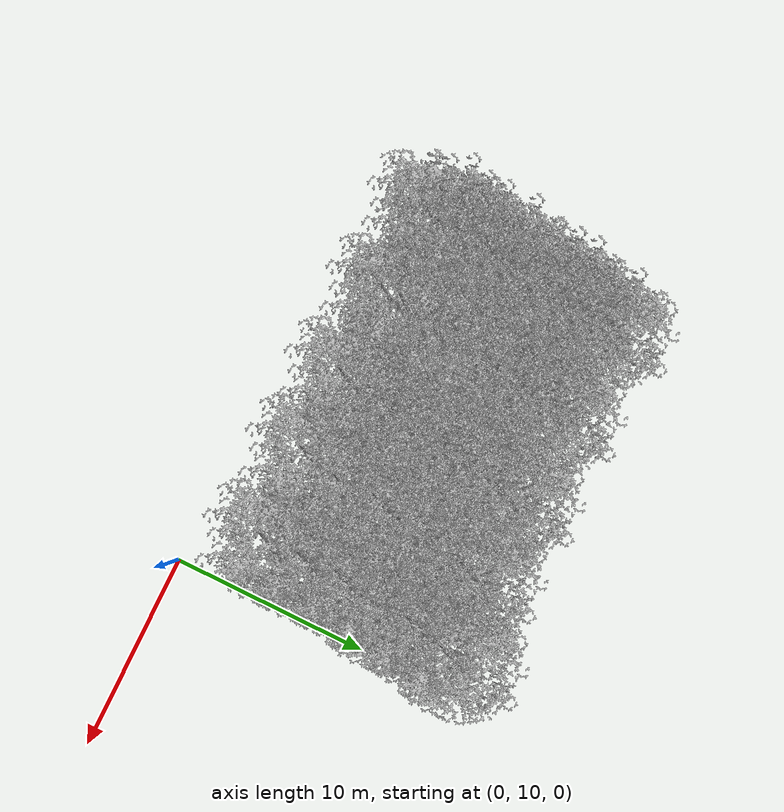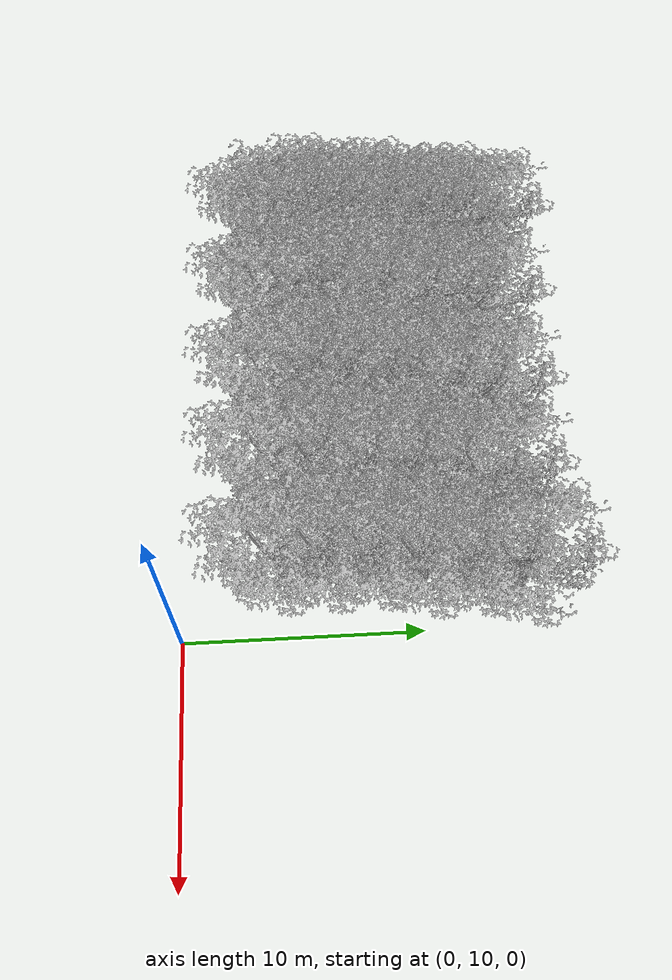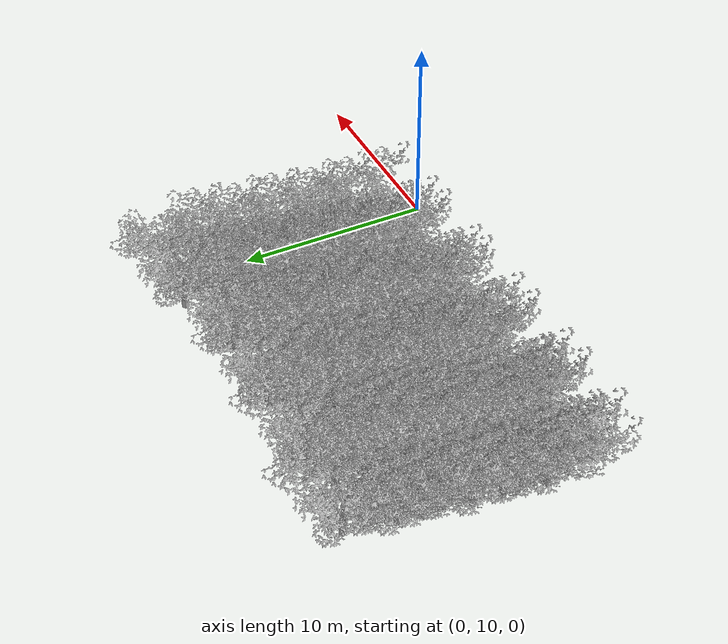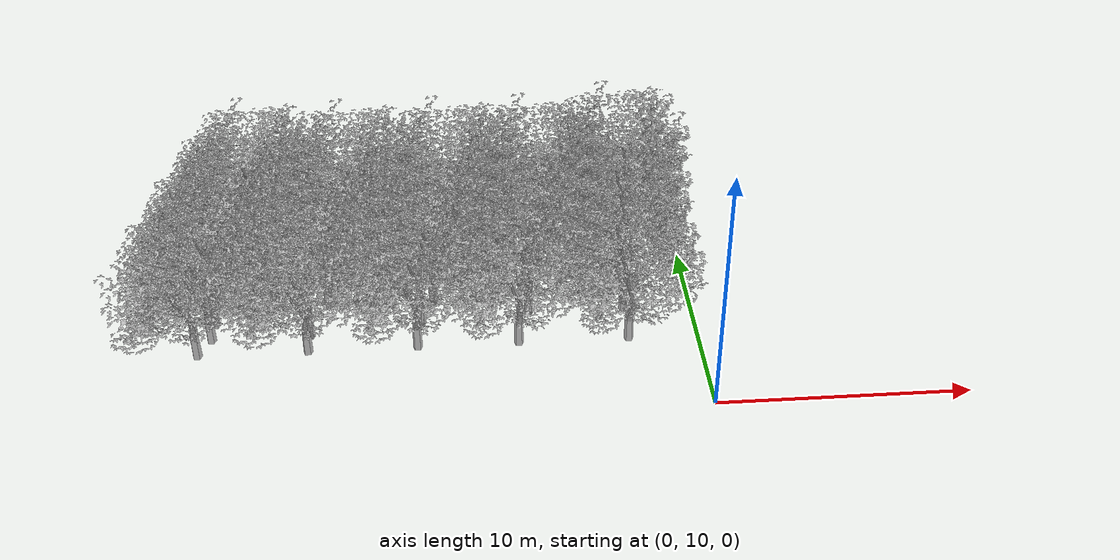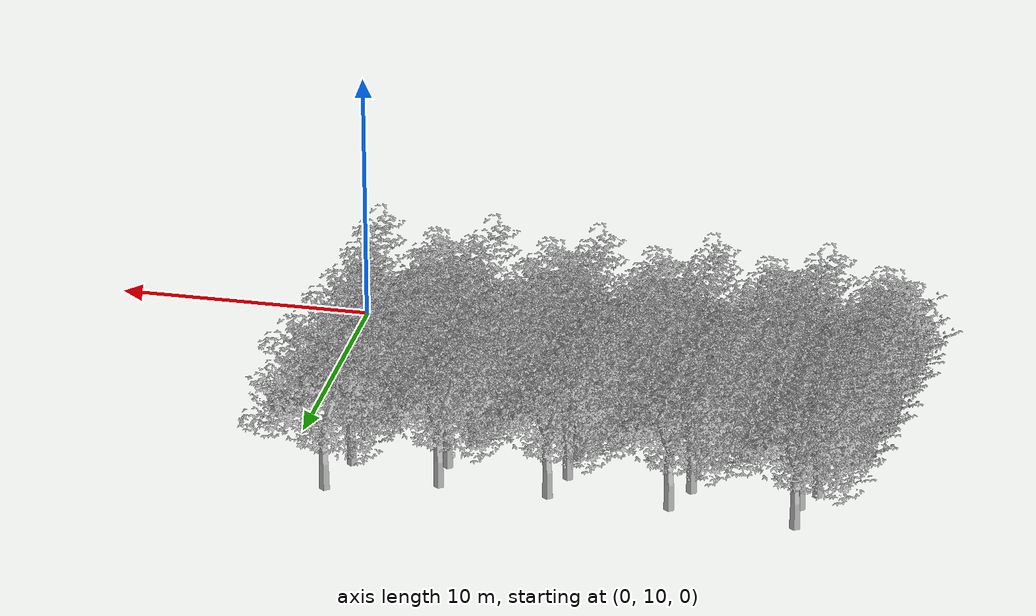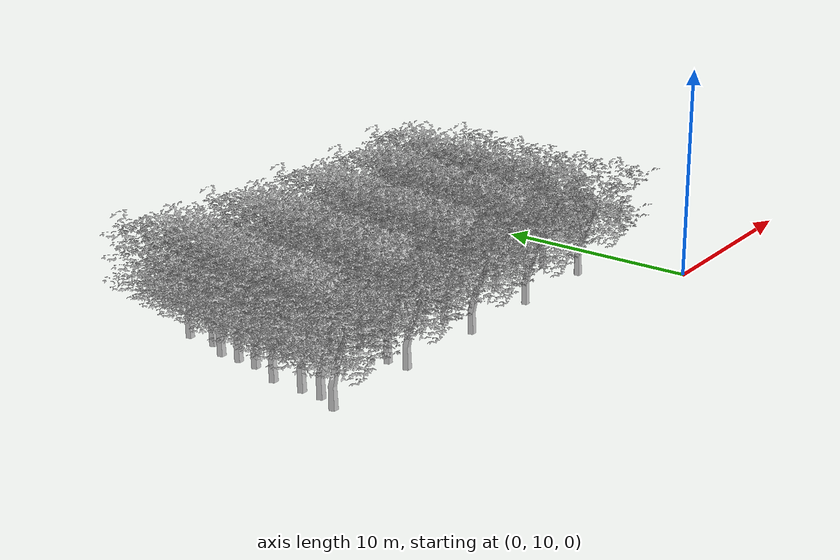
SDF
<sdf version="1.3">
 <world name="default">
  <model name="finihed">
   <pose>-7.490730 14.000000 0.000000 0.000000 0.000000 0.000000</pose>
   <static>1</static>
   <link name="link">
    <inertial>
     <mass>10.000000</mass>
     <inertia>
      <ixx>0.001000</ixx>
      <ixy>0.000000</ixy>
      <ixz>0.000000</ixz>
      <iyy>0.001000</iyy>
      <iyz>0.000000</iyz>
      <izz>0.001000</izz>
     </inertia>
    </inertial>
    <collision name="collision">
     <geometry><cylinder><radius>0.150000</radius><length>5.000000</length></cylinder></geometry>
    </collision>
    <visual name="visual">
     <geometry>
      <mesh><uri>model://finihed/meshes/finihed.dae</uri><scale>1.000000 1.000000 1.000000</scale></mesh>
     </geometry>
    </visual>
    <velocity_decay><linear>0.000000</linear><angular>0.000000</angular></velocity_decay>
   </link>
  </model>
  <model name="finihed_0">
   <pose>-3.000000 14.000000 0.000000 0.000000 0.000000 0.000000</pose>
   <static>1</static>
   <link name="link">
    <inertial>
     <mass>10.000000</mass>
     <inertia>
      <ixx>0.001000</ixx>
      <ixy>0.000000</ixy>
      <ixz>0.000000</ixz>
      <iyy>0.001000</iyy>
      <iyz>0.000000</iyz>
      <izz>0.001000</izz>
     </inertia>
    </inertial>
    <collision name="collision">
     <geometry><cylinder><radius>0.150000</radius><length>5.000000</length></cylinder></geometry>
    </collision>
    <visual name="visual">
     <geometry>
      <mesh><uri>model://finihed/meshes/finihed.dae</uri><scale>1.000000 1.000000 1.000000</scale></mesh>
     </geometry>
    </visual>
    <velocity_decay><linear>0.000000</linear><angular>0.000000</angular></velocity_decay>
   </link>
  </model>
  <model name="finihed_1">
   <pose>-11.593000 14.000000 0.000000 0.000000 0.000000 0.000000</pose>
   <static>1</static>
   <link name="link">
    <inertial>
     <mass>10.000000</mass>
     <inertia>
      <ixx>0.001000</ixx>
      <ixy>0.000000</ixy>
      <ixz>0.000000</ixz>
      <iyy>0.001000</iyy>
      <iyz>0.000000</iyz>
      <izz>0.001000</izz>
     </inertia>
    </inertial>
    <collision name="collision">
     <geometry><cylinder><radius>0.150000</radius><length>5.000000</length></cylinder></geometry>
    </collision>
    <visual name="visual">
     <geometry>
      <mesh><uri>model://finihed/meshes/finihed.dae</uri><scale>1.000000 1.000000 1.000000</scale></mesh>
     </geometry>
    </visual>
    <velocity_decay><linear>0.000000</linear><angular>0.000000</angular></velocity_decay>
   </link>
  </model>
  <model name="finihed_2">
   <pose>-3.000000 16.000000 0.000000 0.000000 0.000000 0.000000</pose>
   <static>1</static>
   <link name="link">
    <inertial>
     <mass>10.000000</mass>
     <inertia>
      <ixx>0.001000</ixx>
      <ixy>0.000000</ixy>
      <ixz>0.000000</ixz>
      <iyy>0.001000</iyy>
      <iyz>0.000000</iyz>
      <izz>0.001000</izz>
     </inertia>
    </inertial>
    <collision name="collision">
     <geometry><cylinder><radius>0.150000</radius><length>5.000000</length></cylinder></geometry>
    </collision>
    <visual name="visual">
     <geometry>
      <mesh><uri>model://finihed/meshes/finihed.dae</uri><scale>1.000000 1.000000 1.000000</scale></mesh>
     </geometry>
    </visual>
    <velocity_decay><linear>0.000000</linear><angular>0.000000</angular></velocity_decay>
   </link>
  </model>
  <model name="finihed_3">
   <pose>-3.000000 18.000000 0.000000 0.000000 0.000000 0.000000</pose>
   <static>1</static>
   <link name="link">
    <inertial>
     <mass>10.000000</mass>
     <inertia>
      <ixx>0.001000</ixx>
      <ixy>0.000000</ixy>
      <ixz>0.000000</ixz>
      <iyy>0.001000</iyy>
      <iyz>0.000000</iyz>
      <izz>0.001000</izz>
     </inertia>
    </inertial>
    <collision name="collision">
     <geometry><cylinder><radius>0.150000</radius><length>5.000000</length></cylinder></geometry>
    </collision>
    <visual name="visual">
     <geometry>
      <mesh><uri>model://finihed/meshes/finihed.dae</uri><scale>1.000000 1.000000 1.000000</scale></mesh>
     </geometry>
    </visual>
    <velocity_decay><linear>0.000000</linear><angular>0.000000</angular></velocity_decay>
   </link>
  </model>
  <model name="finihed_4">
   <pose>-2.558330 20.000000 0.000000 0.000000 0.000000 0.000000</pose>
   <static>1</static>
   <link name="link">
    <inertial>
     <mass>10.000000</mass>
     <inertia>
      <ixx>0.001000</ixx>
      <ixy>0.000000</ixy>
      <ixz>0.000000</ixz>
      <iyy>0.001000</iyy>
      <iyz>0.000000</iyz>
      <izz>0.001000</izz>
     </inertia>
    </inertial>
    <collision name="collision">
     <geometry><cylinder><radius>0.150000</radius><length>5.000000</length></cylinder></geometry>
    </collision>
    <visual name="visual">
     <geometry>
      <mesh><uri>model://finihed/meshes/finihed.dae</uri><scale>1.000000 1.000000 1.000000</scale></mesh>
     </geometry>
    </visual>
    <velocity_decay><linear>0.000000</linear><angular>0.000000</angular></velocity_decay>
   </link>
  </model>
  <model name="finihed_5">
   <pose>-2.521060 22.000000 0.000000 0.000000 0.000000 0.000000</pose>
   <static>1</static>
   <link name="link">
    <inertial>
     <mass>10.000000</mass>
     <inertia>
      <ixx>0.001000</ixx>
      <ixy>0.000000</ixy>
      <ixz>0.000000</ixz>
      <iyy>0.001000</iyy>
      <iyz>0.000000</iyz>
      <izz>0.001000</izz>
     </inertia>
    </inertial>
    <collision name="collision">
     <geometry><cylinder><radius>0.150000</radius><length>5.000000</length></cylinder></geometry>
    </collision>
    <visual name="visual">
     <geometry>
      <mesh><uri>model://finihed/meshes/finihed.dae</uri><scale>1.000000 1.000000 1.000000</scale></mesh>
     </geometry>
    </visual>
    <velocity_decay><linear>0.000000</linear><angular>0.000000</angular></velocity_decay>
   </link>
  </model>
  <model name="finihed_6">
   <pose>-2.000000 24.000000 0.000000 0.000000 0.000000 0.000000</pose>
   <static>1</static>
   <link name="link">
    <inertial>
     <mass>10.000000</mass>
     <inertia>
      <ixx>0.001000</ixx>
      <ixy>0.000000</ixy>
      <ixz>0.000000</ixz>
      <iyy>0.001000</iyy>
      <iyz>0.000000</iyz>
      <izz>0.001000</izz>
     </inertia>
    </inertial>
    <collision name="collision">
     <geometry><cylinder><radius>0.150000</radius><length>5.000000</length></cylinder></geometry>
    </collision>
    <visual name="visual">
     <geometry>
      <mesh><uri>model://finihed/meshes/finihed.dae</uri><scale>1.000000 1.000000 1.000000</scale></mesh>
     </geometry>
    </visual>
    <velocity_decay><linear>0.000000</linear><angular>0.000000</angular></velocity_decay>
   </link>
  </model>
  <model name="finihed_10">
   <pose>-7.000000 16.000000 0.000000 0.000000 0.000000 0.000000</pose>
   <static>1</static>
   <link name="link">
    <inertial>
     <mass>10.000000</mass>
     <inertia>
      <ixx>0.001000</ixx>
      <ixy>0.000000</ixy>
      <ixz>0.000000</ixz>
      <iyy>0.001000</iyy>
      <iyz>0.000000</iyz>
      <izz>0.001000</izz>
     </inertia>
    </inertial>
    <collision name="collision">
     <geometry><cylinder><radius>0.150000</radius><length>5.000000</length></cylinder></geometry>
    </collision>
    <visual name="visual">
     <geometry>
      <mesh><uri>model://finihed/meshes/finihed.dae</uri><scale>1.000000 1.000000 1.000000</scale></mesh>
     </geometry>
    </visual>
    <velocity_decay><linear>0.000000</linear><angular>0.000000</angular></velocity_decay>
   </link>
  </model>
  <model name="finihed_11">
   <pose>-7.000000 18.000000 0.000000 0.000000 0.000000 0.000000</pose>
   <static>1</static>
   <link name="link">
    <inertial>
     <mass>10.000000</mass>
     <inertia>
      <ixx>0.001000</ixx>
      <ixy>0.000000</ixy>
      <ixz>0.000000</ixz>
      <iyy>0.001000</iyy>
      <iyz>0.000000</iyz>
      <izz>0.001000</izz>
     </inertia>
    </inertial>
    <collision name="collision">
     <geometry><cylinder><radius>0.150000</radius><length>5.000000</length></cylinder></geometry>
    </collision>
    <visual name="visual">
     <geometry>
      <mesh><uri>model://finihed/meshes/finihed.dae</uri><scale>1.000000 1.000000 1.000000</scale></mesh>
     </geometry>
    </visual>
    <velocity_decay><linear>0.000000</linear><angular>0.000000</angular></velocity_decay>
   </link>
  </model>
  <model name="finihed_12">
   <pose>-6.498110 19.570800 0.000000 0.000000 0.000000 0.000000</pose>
   <static>1</static>
   <link name="link">
    <inertial>
     <mass>10.000000</mass>
     <inertia>
      <ixx>0.001000</ixx>
      <ixy>0.000000</ixy>
      <ixz>0.000000</ixz>
      <iyy>0.001000</iyy>
      <iyz>0.000000</iyz>
      <izz>0.001000</izz>
     </inertia>
    </inertial>
    <collision name="collision">
     <geometry><cylinder><radius>0.150000</radius><length>5.000000</length></cylinder></geometry>
    </collision>
    <visual name="visual">
     <geometry>
      <mesh><uri>model://finihed/meshes/finihed.dae</uri><scale>1.000000 1.000000 1.000000</scale></mesh>
     </geometry>
    </visual>
    <velocity_decay><linear>0.000000</linear><angular>0.000000</angular></velocity_decay>
   </link>
  </model>
  <model name="finihed_13">
   <pose>-6.000000 21.501500 0.000000 0.000000 0.000000 0.000000</pose>
   <static>1</static>
   <link name="link">
    <inertial>
     <mass>10.000000</mass>
     <inertia>
      <ixx>0.001000</ixx>
      <ixy>0.000000</ixy>
      <ixz>0.000000</ixz>
      <iyy>0.001000</iyy>
      <iyz>0.000000</iyz>
      <izz>0.001000</izz>
     </inertia>
    </inertial>
    <collision name="collision">
     <geometry><cylinder><radius>0.150000</radius><length>5.000000</length></cylinder></geometry>
    </collision>
    <visual name="visual">
     <geometry>
      <mesh><uri>model://finihed/meshes/finihed.dae</uri><scale>1.000000 1.000000 1.000000</scale></mesh>
     </geometry>
    </visual>
    <velocity_decay><linear>0.000000</linear><angular>0.000000</angular></velocity_decay>
   </link>
  </model>
  <model name="finihed_14">
   <pose>-6.000000 23.000000 0.000000 0.000000 0.000000 0.000000</pose>
   <static>1</static>
   <link name="link">
    <inertial>
     <mass>10.000000</mass>
     <inertia>
      <ixx>0.001000</ixx>
      <ixy>0.000000</ixy>
      <ixz>0.000000</ixz>
      <iyy>0.001000</iyy>
      <iyz>0.000000</iyz>
      <izz>0.001000</izz>
     </inertia>
    </inertial>
    <collision name="collision">
     <geometry><cylinder><radius>0.150000</radius><length>5.000000</length></cylinder></geometry>
    </collision>
    <visual name="visual">
     <geometry>
      <mesh><uri>model://finihed/meshes/finihed.dae</uri><scale>1.000000 1.000000 1.000000</scale></mesh>
     </geometry>
    </visual>
    <velocity_decay><linear>0.000000</linear><angular>0.000000</angular></velocity_decay>
   </link>
  </model>
  <model name="finihed_18">
   <pose>-11.477200 15.570200 0.000000 0.000000 0.000000 0.000000</pose>
   <static>1</static>
   <link name="link">
    <inertial>
     <mass>10.000000</mass>
     <inertia>
      <ixx>0.001000</ixx>
      <ixy>0.000000</ixy>
      <ixz>0.000000</ixz>
      <iyy>0.001000</iyy>
      <iyz>0.000000</iyz>
      <izz>0.001000</izz>
     </inertia>
    </inertial>
    <collision name="collision">
     <geometry><cylinder><radius>0.150000</radius><length>5.000000</length></cylinder></geometry>
    </collision>
    <visual name="visual">
     <geometry>
      <mesh><uri>model://finihed/meshes/finihed.dae</uri><scale>1.000000 1.000000 1.000000</scale></mesh>
     </geometry>
    </visual>
    <velocity_decay><linear>0.000000</linear><angular>0.000000</angular></velocity_decay>
   </link>
  </model>
  <model name="finihed_19">
   <pose>-11.000000 17.000000 0.000000 0.000000 0.000000 0.000000</pose>
   <static>1</static>
   <link name="link">
    <inertial>
     <mass>10.000000</mass>
     <inertia>
      <ixx>0.001000</ixx>
      <ixy>0.000000</ixy>
      <ixz>0.000000</ixz>
      <iyy>0.001000</iyy>
      <iyz>0.000000</iyz>
      <izz>0.001000</izz>
     </inertia>
    </inertial>
    <collision name="collision">
     <geometry><cylinder><radius>0.150000</radius><length>5.000000</length></cylinder></geometry>
    </collision>
    <visual name="visual">
     <geometry>
      <mesh><uri>model://finihed/meshes/finihed.dae</uri><scale>1.000000 1.000000 1.000000</scale></mesh>
     </geometry>
    </visual>
    <velocity_decay><linear>0.000000</linear><angular>0.000000</angular></velocity_decay>
   </link>
  </model>
  <model name="finihed_20">
   <pose>-11.000000 18.000000 0.000000 0.000000 0.000000 0.000000</pose>
   <static>1</static>
   <link name="link">
    <inertial>
     <mass>10.000000</mass>
     <inertia>
      <ixx>0.001000</ixx>
      <ixy>0.000000</ixy>
      <ixz>0.000000</ixz>
      <iyy>0.001000</iyy>
      <iyz>0.000000</iyz>
      <izz>0.001000</izz>
     </inertia>
    </inertial>
    <collision name="collision">
     <geometry><cylinder><radius>0.150000</radius><length>5.000000</length></cylinder></geometry>
    </collision>
    <visual name="visual">
     <geometry>
      <mesh><uri>model://finihed/meshes/finihed.dae</uri><scale>1.000000 1.000000 1.000000</scale></mesh>
     </geometry>
    </visual>
    <velocity_decay><linear>0.000000</linear><angular>0.000000</angular></velocity_decay>
   </link>
  </model>
  <model name="finihed_21">
   <pose>-10.556000 20.000000 0.000000 0.000000 0.000000 0.000000</pose>
   <static>1</static>
   <link name="link">
    <inertial>
     <mass>10.000000</mass>
     <inertia>
      <ixx>0.001000</ixx>
      <ixy>0.000000</ixy>
      <ixz>0.000000</ixz>
      <iyy>0.001000</iyy>
      <iyz>0.000000</iyz>
      <izz>0.001000</izz>
     </inertia>
    </inertial>
    <collision name="collision">
     <geometry><cylinder><radius>0.150000</radius><length>5.000000</length></cylinder></geometry>
    </collision>
    <visual name="visual">
     <geometry>
      <mesh><uri>model://finihed/meshes/finihed.dae</uri><scale>1.000000 1.000000 1.000000</scale></mesh>
     </geometry>
    </visual>
    <velocity_decay><linear>0.000000</linear><angular>0.000000</angular></velocity_decay>
   </link>
  </model>
  <model name="finihed_22">
   <pose>-10.454100 21.491600 0.000000 0.000000 0.000000 0.000000</pose>
   <static>1</static>
   <link name="link">
    <inertial>
     <mass>10.000000</mass>
     <inertia>
      <ixx>0.001000</ixx>
      <ixy>0.000000</ixy>
      <ixz>0.000000</ixz>
      <iyy>0.001000</iyy>
      <iyz>0.000000</iyz>
      <izz>0.001000</izz>
     </inertia>
    </inertial>
    <collision name="collision">
     <geometry><cylinder><radius>0.150000</radius><length>5.000000</length></cylinder></geometry>
    </collision>
    <visual name="visual">
     <geometry>
      <mesh><uri>model://finihed/meshes/finihed.dae</uri><scale>1.000000 1.000000 1.000000</scale></mesh>
     </geometry>
    </visual>
    <velocity_decay><linear>0.000000</linear><angular>0.000000</angular></velocity_decay>
   </link>
  </model>
  <model name="finihed_23">
   <pose>-10.000000 23.000000 0.000000 0.000000 0.000000 0.000000</pose>
   <static>1</static>
   <link name="link">
    <inertial>
     <mass>10.000000</mass>
     <inertia>
      <ixx>0.001000</ixx>
      <ixy>0.000000</ixy>
      <ixz>0.000000</ixz>
      <iyy>0.001000</iyy>
      <iyz>0.000000</iyz>
      <izz>0.001000</izz>
     </inertia>
    </inertial>
    <collision name="collision">
     <geometry><cylinder><radius>0.150000</radius><length>5.000000</length></cylinder></geometry>
    </collision>
    <visual name="visual">
     <geometry>
      <mesh><uri>model://finihed/meshes/finihed.dae</uri><scale>1.000000 1.000000 1.000000</scale></mesh>
     </geometry>
    </visual>
    <velocity_decay><linear>0.000000</linear><angular>0.000000</angular></velocity_decay>
   </link>
  </model>
  <model name="finihed_36">
   <pose>-16.000000 14.000000 0.000000 0.000000 0.000000 0.000000</pose>
   <static>1</static>
   <link name="link">
    <inertial>
     <mass>10.000000</mass>
     <inertia>
      <ixx>0.001000</ixx>
      <ixy>0.000000</ixy>
      <ixz>0.000000</ixz>
      <iyy>0.001000</iyy>
      <iyz>0.000000</iyz>
      <izz>0.001000</izz>
     </inertia>
    </inertial>
    <collision name="collision">
     <geometry><cylinder><radius>0.150000</radius><length>5.000000</length></cylinder></geometry>
    </collision>
    <visual name="visual">
     <geometry>
      <mesh><uri>model://finihed/meshes/finihed.dae</uri><scale>1.000000 1.000000 1.000000</scale></mesh>
     </geometry>
    </visual>
    <velocity_decay><linear>0.000000</linear><angular>0.000000</angular></velocity_decay>
   </link>
  </model>
  <model name="finihed_40">
   <pose>-15.000000 20.524900 0.000000 0.000000 0.000000 0.000000</pose>
   <static>1</static>
   <link name="link">
    <inertial>
     <mass>10.000000</mass>
     <inertia>
      <ixx>0.001000</ixx>
      <ixy>0.000000</ixy>
      <ixz>0.000000</ixz>
      <iyy>0.001000</iyy>
      <iyz>0.000000</iyz>
      <izz>0.001000</izz>
     </inertia>
    </inertial>
    <collision name="collision">
     <geometry><cylinder><radius>0.150000</radius><length>5.000000</length></cylinder></geometry>
    </collision>
    <visual name="visual">
     <geometry>
      <mesh><uri>model://finihed/meshes/finihed.dae</uri><scale>1.000000 1.000000 1.000000</scale></mesh>
     </geometry>
    </visual>
    <velocity_decay><linear>0.000000</linear><angular>0.000000</angular></velocity_decay>
   </link>
  </model>
  <model name="finihed_41">
   <pose>-14.416800 23.000000 0.000000 0.000000 0.000000 0.000000</pose>
   <static>1</static>
   <link name="link">
    <inertial>
     <mass>10.000000</mass>
     <inertia>
      <ixx>0.001000</ixx>
      <ixy>0.000000</ixy>
      <ixz>0.000000</ixz>
      <iyy>0.001000</iyy>
      <iyz>0.000000</iyz>
      <izz>0.001000</izz>
     </inertia>
    </inertial>
    <collision name="collision">
     <geometry><cylinder><radius>0.150000</radius><length>5.000000</length></cylinder></geometry>
    </collision>
    <visual name="visual">
     <geometry>
      <mesh><uri>model://finihed/meshes/finihed.dae</uri><scale>1.000000 1.000000 1.000000</scale></mesh>
     </geometry>
    </visual>
    <velocity_decay><linear>0.000000</linear><angular>0.000000</angular></velocity_decay>
   </link>
  </model>
  <model name="finihed_42">
   <pose>-15.414800 17.000000 0.000000 0.000000 0.000000 0.000000</pose>
   <static>1</static>
   <link name="link">
    <inertial>
     <mass>10.000000</mass>
     <inertia>
      <ixx>0.001000</ixx>
      <ixy>0.000000</ixy>
      <ixz>0.000000</ixz>
      <iyy>0.001000</iyy>
      <iyz>0.000000</iyz>
      <izz>0.001000</izz>
     </inertia>
    </inertial>
    <collision name="collision">
     <geometry><cylinder><radius>0.150000</radius><length>5.000000</length></cylinder></geometry>
    </collision>
    <visual name="visual">
     <geometry>
      <mesh><uri>model://finihed/meshes/finihed.dae</uri><scale>1.000000 1.000000 1.000000</scale></mesh>
     </geometry>
    </visual>
    <velocity_decay><linear>0.000000</linear><angular>0.000000</angular></velocity_decay>
   </link>
  </model>
  <model name="finihed_49">
   <pose>-15.000000 19.000000 0.000000 0.000000 0.000000 0.000000</pose>
   <static>1</static>
   <link name="link">
    <inertial>
     <mass>10.000000</mass>
     <inertia>
      <ixx>0.001000</ixx>
      <ixy>0.000000</ixy>
      <ixz>0.000000</ixz>
      <iyy>0.001000</iyy>
      <iyz>0.000000</iyz>
      <izz>0.001000</izz>
     </inertia>
    </inertial>
    <collision name="collision">
     <geometry><cylinder><radius>0.150000</radius><length>5.000000</length></cylinder></geometry>
    </collision>
    <visual name="visual">
     <geometry>
      <mesh><uri>model://finihed/meshes/finihed.dae</uri><scale>1.000000 1.000000 1.000000</scale></mesh>
     </geometry>
    </visual>
    <velocity_decay><linear>0.000000</linear><angular>0.000000</angular></velocity_decay>
   </link>
  </model>
  <model name="finihed_50">
   <pose>-15.000000 21.581100 0.000000 0.000000 0.000000 0.000000</pose>
   <static>1</static>
   <link name="link">
    <inertial>
     <mass>10.000000</mass>
     <inertia>
      <ixx>0.001000</ixx>
      <ixy>0.000000</ixy>
      <ixz>0.000000</ixz>
      <iyy>0.001000</iyy>
      <iyz>0.000000</iyz>
      <izz>0.001000</izz>
     </inertia>
    </inertial>
    <collision name="collision">
     <geometry><cylinder><radius>0.150000</radius><length>5.000000</length></cylinder></geometry>
    </collision>
    <visual name="visual">
     <geometry>
      <mesh><uri>model://finihed/meshes/finihed.dae</uri><scale>1.000000 1.000000 1.000000</scale></mesh>
     </geometry>
    </visual>
    <velocity_decay><linear>0.000000</linear><angular>0.000000</angular></velocity_decay>
   </link>
  </model>
  <model name="finihed_51">
   <pose>-16.000000 15.000000 0.000000 0.000000 0.000000 0.000000</pose>
   <static>1</static>
   <link name="link">
    <inertial>
     <mass>10.000000</mass>
     <inertia>
      <ixx>0.001000</ixx>
      <ixy>0.000000</ixy>
      <ixz>0.000000</ixz>
      <iyy>0.001000</iyy>
      <iyz>0.000000</iyz>
      <izz>0.001000</izz>
     </inertia>
    </inertial>
    <collision name="collision">
     <geometry><cylinder><radius>0.150000</radius><length>5.000000</length></cylinder></geometry>
    </collision>
    <visual name="visual">
     <geometry>
      <mesh><uri>model://finihed/meshes/finihed.dae</uri><scale>1.000000 1.000000 1.000000</scale></mesh>
     </geometry>
    </visual>
    <velocity_decay><linear>0.000000</linear><angular>0.000000</angular></velocity_decay>
   </link>
  </model>
  <model name="finihed_52">
   <pose>-20.409800 14.000000 0.000000 0.000000 0.000000 0.000000</pose>
   <static>1</static>
   <link name="link">
    <inertial>
     <mass>10.000000</mass>
     <inertia>
      <ixx>0.001000</ixx>
      <ixy>0.000000</ixy>
      <ixz>0.000000</ixz>
      <iyy>0.001000</iyy>
      <iyz>0.000000</iyz>
      <izz>0.001000</izz>
     </inertia>
    </inertial>
    <collision name="collision">
     <geometry><cylinder><radius>0.150000</radius><length>5.000000</length></cylinder></geometry>
    </collision>
    <visual name="visual">
     <geometry>
      <mesh><uri>model://finihed/meshes/finihed.dae</uri><scale>1.000000 1.000000 1.000000</scale></mesh>
     </geometry>
    </visual>
    <velocity_decay><linear>0.000000</linear><angular>0.000000</angular></velocity_decay>
   </link>
  </model>
  <model name="finihed_55">
   <pose>-19.486200 20.000000 0.000000 0.000000 0.000000 0.000000</pose>
   <static>1</static>
   <link name="link">
    <inertial>
     <mass>10.000000</mass>
     <inertia>
      <ixx>0.001000</ixx>
      <ixy>0.000000</ixy>
      <ixz>0.000000</ixz>
      <iyy>0.001000</iyy>
      <iyz>0.000000</iyz>
      <izz>0.001000</izz>
     </inertia>
    </inertial>
    <collision name="collision">
     <geometry><cylinder><radius>0.150000</radius><length>5.000000</length></cylinder></geometry>
    </collision>
    <visual name="visual">
     <geometry>
      <mesh><uri>model://finihed/meshes/finihed.dae</uri><scale>1.000000 1.000000 1.000000</scale></mesh>
     </geometry>
    </visual>
    <velocity_decay><linear>0.000000</linear><angular>0.000000</angular></velocity_decay>
   </link>
  </model>
  <model name="finihed_60">
   <pose>-19.000000 23.436000 0.000000 0.000000 0.000000 0.000000</pose>
   <static>1</static>
   <link name="link">
    <inertial>
     <mass>10.000000</mass>
     <inertia>
      <ixx>0.001000</ixx>
      <ixy>0.000000</ixy>
      <ixz>0.000000</ixz>
      <iyy>0.001000</iyy>
      <iyz>0.000000</iyz>
      <izz>0.001000</izz>
     </inertia>
    </inertial>
    <collision name="collision">
     <geometry><cylinder><radius>0.150000</radius><length>5.000000</length></cylinder></geometry>
    </collision>
    <visual name="visual">
     <geometry>
      <mesh><uri>model://finihed/meshes/finihed.dae</uri><scale>1.000000 1.000000 1.000000</scale></mesh>
     </geometry>
    </visual>
    <velocity_decay><linear>0.000000</linear><angular>0.000000</angular></velocity_decay>
   </link>
  </model>
  <model name="finihed_61">
   <pose>-19.000000 22.000000 0.000000 0.000000 0.000000 0.000000</pose>
   <static>1</static>
   <link name="link">
    <inertial>
     <mass>10.000000</mass>
     <inertia>
      <ixx>0.001000</ixx>
      <ixy>0.000000</ixy>
      <ixz>0.000000</ixz>
      <iyy>0.001000</iyy>
      <iyz>0.000000</iyz>
      <izz>0.001000</izz>
     </inertia>
    </inertial>
    <collision name="collision">
     <geometry><cylinder><radius>0.150000</radius><length>5.000000</length></cylinder></geometry>
    </collision>
    <visual name="visual">
     <geometry>
      <mesh><uri>model://finihed/meshes/finihed.dae</uri><scale>1.000000 1.000000 1.000000</scale></mesh>
     </geometry>
    </visual>
    <velocity_decay><linear>0.000000</linear><angular>0.000000</angular></velocity_decay>
   </link>
  </model>
  <model name="finihed_62">
   <pose>-19.495300 21.000000 0.000000 0.000000 0.000000 0.000000</pose>
   <static>1</static>
   <link name="link">
    <inertial>
     <mass>10.000000</mass>
     <inertia>
      <ixx>0.001000</ixx>
      <ixy>0.000000</ixy>
      <ixz>0.000000</ixz>
      <iyy>0.001000</iyy>
      <iyz>0.000000</iyz>
      <izz>0.001000</izz>
     </inertia>
    </inertial>
    <collision name="collision">
     <geometry><cylinder><radius>0.150000</radius><length>5.000000</length></cylinder></geometry>
    </collision>
    <visual name="visual">
     <geometry>
      <mesh><uri>model://finihed/meshes/finihed.dae</uri><scale>1.000000 1.000000 1.000000</scale></mesh>
     </geometry>
    </visual>
    <velocity_decay><linear>0.000000</linear><angular>0.000000</angular></velocity_decay>
   </link>
  </model>
  <model name="finihed_63">
   <pose>-19.509300 19.000000 0.000000 0.000000 0.000000 0.000000</pose>
   <static>1</static>
   <link name="link">
    <inertial>
     <mass>10.000000</mass>
     <inertia>
      <ixx>0.001000</ixx>
      <ixy>0.000000</ixy>
      <ixz>0.000000</ixz>
      <iyy>0.001000</iyy>
      <iyz>0.000000</iyz>
      <izz>0.001000</izz>
     </inertia>
    </inertial>
    <collision name="collision">
     <geometry><cylinder><radius>0.150000</radius><length>5.000000</length></cylinder></geometry>
    </collision>
    <visual name="visual">
     <geometry>
      <mesh><uri>model://finihed/meshes/finihed.dae</uri><scale>1.000000 1.000000 1.000000</scale></mesh>
     </geometry>
    </visual>
    <velocity_decay><linear>0.000000</linear><angular>0.000000</angular></velocity_decay>
   </link>
  </model>
  <model name="finihed_64">
   <pose>-20.000000 17.533400 0.000000 0.000000 0.000000 0.000000</pose>
   <static>1</static>
   <link name="link">
    <inertial>
     <mass>10.000000</mass>
     <inertia>
      <ixx>0.001000</ixx>
      <ixy>0.000000</ixy>
      <ixz>0.000000</ixz>
      <iyy>0.001000</iyy>
      <iyz>0.000000</iyz>
      <izz>0.001000</izz>
     </inertia>
    </inertial>
    <collision name="collision">
     <geometry><cylinder><radius>0.150000</radius><length>5.000000</length></cylinder></geometry>
    </collision>
    <visual name="visual">
     <geometry>
      <mesh><uri>model://finihed/meshes/finihed.dae</uri><scale>1.000000 1.000000 1.000000</scale></mesh>
     </geometry>
    </visual>
    <velocity_decay><linear>0.000000</linear><angular>0.000000</angular></velocity_decay>
   </link>
  </model>
  <model name="finihed_65">
   <pose>-20.000000 16.000000 0.000000 0.000000 0.000000 0.000000</pose>
   <static>1</static>
   <link name="link">
    <inertial>
     <mass>10.000000</mass>
     <inertia>
      <ixx>0.001000</ixx>
      <ixy>0.000000</ixy>
      <ixz>0.000000</ixz>
      <iyy>0.001000</iyy>
      <iyz>0.000000</iyz>
      <izz>0.001000</izz>
     </inertia>
    </inertial>
    <collision name="collision">
     <geometry><cylinder><radius>0.150000</radius><length>5.000000</length></cylinder></geometry>
    </collision>
    <visual name="visual">
     <geometry>
      <mesh><uri>model://finihed/meshes/finihed.dae</uri><scale>1.000000 1.000000 1.000000</scale></mesh>
     </geometry>
    </visual>
    <velocity_decay><linear>0.000000</linear><angular>0.000000</angular></velocity_decay>
   </link>
  </model>
  <model name="finihed_66">
   <pose>-20.000000 15.000000 0.000000 0.000000 0.000000 0.000000</pose>
   <static>1</static>
   <link name="link">
    <inertial>
     <mass>10.000000</mass>
     <inertia>
      <ixx>0.001000</ixx>
      <ixy>0.000000</ixy>
      <ixz>0.000000</ixz>
      <iyy>0.001000</iyy>
      <iyz>0.000000</iyz>
      <izz>0.001000</izz>
     </inertia>
    </inertial>
    <collision name="collision">
     <geometry><cylinder><radius>0.150000</radius><length>5.000000</length></cylinder></geometry>
    </collision>
    <visual name="visual">
     <geometry>
      <mesh><uri>model://finihed/meshes/finihed.dae</uri><scale>1.000000 1.000000 1.000000</scale></mesh>
     </geometry>
    </visual>
    <velocity_decay><linear>0.000000</linear><angular>0.000000</angular></velocity_decay>
   </link>
  </model>
 </world>
</sdf>
